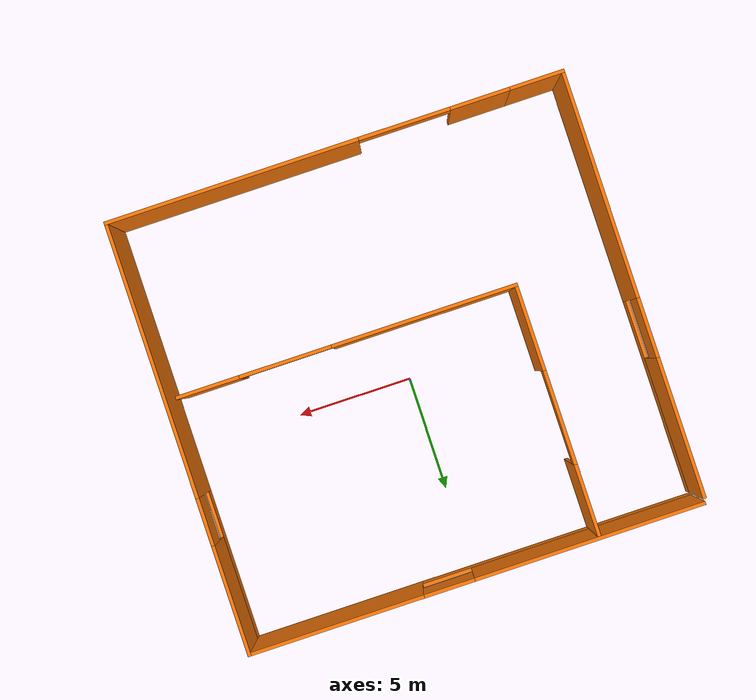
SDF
<?xml version='1.0'?>
<sdf version='1.6'>
  <model name='buildingmodel'>
    <pose frame=''>-0.063787 -0.708396 0 0 -0 0</pose>
    <link name='Wall_16'>
      <pose frame=''>1.175 -9.3 0 0 -0 0</pose>
      <visual name='Wall_16_Visual_0'>
        <pose frame=''>-7.45803 0 1.25 0 -0 0</pose>
        <geometry>
          <box>
            <size>2.58395 0.15 2.5</size>
          </box>
        </geometry>
        <material>
          <script>
            <uri>file://media/materials/scripts/gazebo.material</uri>
            <name>Gazebo/Grey</name>
          </script>
          <ambient>0.996078 0.47451 0.0196078 1</ambient>
        </material>
        <meta>
          <layer>0</layer>
        </meta>
      </visual>
      <collision name='Wall_16_Collision_0'>
        <geometry>
          <box>
            <size>2.58395 0.15 2.5</size>
          </box>
        </geometry>
        <pose frame=''>-7.45803 0 1.25 0 -0 0</pose>
      </collision>
      <visual name='Wall_16_Visual_1'>
        <pose frame=''>3.26705 0 1.25 0 -0 0</pose>
        <geometry>
          <box>
            <size>10.9659 0.15 2.5</size>
          </box>
        </geometry>
        <material>
          <script>
            <uri>file://media/materials/scripts/gazebo.material</uri>
            <name>Gazebo/Grey</name>
          </script>
          <ambient>0.996078 0.47451 0.0196078 1</ambient>
        </material>
        <meta>
          <layer>0</layer>
        </meta>
      </visual>
      <collision name='Wall_16_Collision_1'>
        <geometry>
          <box>
            <size>10.9659 0.15 2.5</size>
          </box>
        </geometry>
        <pose frame=''>3.26705 0 1.25 0 -0 0</pose>
      </collision>
      <visual name='Wall_16_Visual_2'>
        <pose frame=''>-4.19098 0 2.25 0 -0 0</pose>
        <geometry>
          <box>
            <size>3.95016 0.15 0.5</size>
          </box>
        </geometry>
        <material>
          <script>
            <uri>file://media/materials/scripts/gazebo.material</uri>
            <name>Gazebo/Grey</name>
          </script>
          <ambient>0.996078 0.47451 0.0196078 1</ambient>
        </material>
        <meta>
          <layer>0</layer>
        </meta>
      </visual>
      <collision name='Wall_16_Collision_2'>
        <geometry>
          <box>
            <size>3.95016 0.15 0.5</size>
          </box>
        </geometry>
        <pose frame=''>-4.19098 0 2.25 0 -0 0</pose>
      </collision>
    </link>
    <link name='Wall_19'>
      <collision name='Wall_19_Collision'>
        <geometry>
          <box>
            <size>2.5 0.15 2.5</size>
          </box>
        </geometry>
        <pose frame=''>0 0 1.25 0 -0 0</pose>
      </collision>
      <visual name='Wall_19_Visual'>
        <pose frame=''>0 0 1.25 0 -0 0</pose>
        <geometry>
          <box>
            <size>2.5 0.15 2.5</size>
          </box>
        </geometry>
        <material>
          <script>
            <uri>file://media/materials/scripts/gazebo.material</uri>
            <name>Gazebo/Grey</name>
          </script>
          <ambient>0.996078 0.47451 0.0196078 1</ambient>
        </material>
        <meta>
          <layer>0</layer>
        </meta>
      </visual>
      <pose frame=''>-8.675 -9.3 0 0 -0 3.14159</pose>
    </link>
    <link name='Wall_39'>
      <pose frame=''>9.85 0 0 0 -0 1.5708</pose>
      <visual name='Wall_39_Visual_0'>
        <pose frame=''>-3.40224 0 1.25 0 -0 0</pose>
        <geometry>
          <box>
            <size>11.9455 0.15 2.5</size>
          </box>
        </geometry>
        <material>
          <script>
            <uri>file://media/materials/scripts/gazebo.material</uri>
            <name>Gazebo/Grey</name>
          </script>
          <ambient>0.996078 0.47451 0.0196078 1</ambient>
        </material>
        <meta>
          <layer>0</layer>
        </meta>
      </visual>
      <collision name='Wall_39_Collision_0'>
        <geometry>
          <box>
            <size>11.9455 0.15 2.5</size>
          </box>
        </geometry>
        <pose frame=''>-3.40224 0 1.25 0 -0 0</pose>
      </collision>
      <visual name='Wall_39_Visual_1'>
        <pose frame=''>5.97276 0 0.25 0 -0 0</pose>
        <geometry>
          <box>
            <size>6.80448 0.15 0.5</size>
          </box>
        </geometry>
        <material>
          <script>
            <uri>file://media/materials/scripts/gazebo.material</uri>
            <name>Gazebo/Grey</name>
          </script>
          <ambient>0.996078 0.47451 0.0196078 1</ambient>
        </material>
        <meta>
          <layer>0</layer>
        </meta>
      </visual>
      <collision name='Wall_39_Collision_1'>
        <geometry>
          <box>
            <size>6.80448 0.15 0.5</size>
          </box>
        </geometry>
        <pose frame=''>5.97276 0 0.25 0 -0 0</pose>
      </collision>
      <visual name='Wall_39_Visual_2'>
        <pose frame=''>6.99343 0 1.5 0 -0 0</pose>
        <geometry>
          <box>
            <size>4.76314 0.15 2</size>
          </box>
        </geometry>
        <material>
          <script>
            <uri>file://media/materials/scripts/gazebo.material</uri>
            <name>Gazebo/Grey</name>
          </script>
          <ambient>0.996078 0.47451 0.0196078 1</ambient>
        </material>
        <meta>
          <layer>0</layer>
        </meta>
      </visual>
      <collision name='Wall_39_Collision_2'>
        <geometry>
          <box>
            <size>4.76314 0.15 2</size>
          </box>
        </geometry>
        <pose frame=''>6.99343 0 1.5 0 -0 0</pose>
      </collision>
      <visual name='Wall_39_Visual_3'>
        <pose frame=''>3.59119 0 1.9 0 -0 0</pose>
        <geometry>
          <box>
            <size>2.04134 0.15 1.2</size>
          </box>
        </geometry>
        <material>
          <script>
            <uri>file://media/materials/scripts/gazebo.material</uri>
            <name>Gazebo/Grey</name>
          </script>
          <ambient>0.996078 0.47451 0.0196078 1</ambient>
        </material>
        <meta>
          <layer>0</layer>
        </meta>
      </visual>
      <collision name='Wall_39_Collision_3'>
        <geometry>
          <box>
            <size>2.04134 0.15 1.2</size>
          </box>
        </geometry>
        <pose frame=''>3.59119 0 1.9 0 -0 0</pose>
      </collision>
    </link>
    <link name='Wall_40'>
      <pose frame=''>0.05 9.3 0 0 -0 3.14159</pose>
      <visual name='Wall_40_Visual_0'>
        <pose frame=''>-6.06574 0 1.25 0 -0 0</pose>
        <geometry>
          <box>
            <size>7.61852 0.15 2.5</size>
          </box>
        </geometry>
        <material>
          <script>
            <uri>file://media/materials/scripts/gazebo.material</uri>
            <name>Gazebo/Grey</name>
          </script>
          <ambient>0.996078 0.47451 0.0196078 1</ambient>
        </material>
        <meta>
          <layer>0</layer>
        </meta>
      </visual>
      <collision name='Wall_40_Collision_0'>
        <geometry>
          <box>
            <size>7.61852 0.15 2.5</size>
          </box>
        </geometry>
        <pose frame=''>-6.06574 0 1.25 0 -0 0</pose>
      </collision>
      <visual name='Wall_40_Visual_1'>
        <pose frame=''>3.80926 0 0.25 0 -0 0</pose>
        <geometry>
          <box>
            <size>12.1315 0.15 0.5</size>
          </box>
        </geometry>
        <material>
          <script>
            <uri>file://media/materials/scripts/gazebo.material</uri>
            <name>Gazebo/Grey</name>
          </script>
          <ambient>0.996078 0.47451 0.0196078 1</ambient>
        </material>
        <meta>
          <layer>0</layer>
        </meta>
      </visual>
      <collision name='Wall_40_Collision_1'>
        <geometry>
          <box>
            <size>12.1315 0.15 0.5</size>
          </box>
        </geometry>
        <pose frame=''>3.80926 0 0.25 0 -0 0</pose>
      </collision>
      <visual name='Wall_40_Visual_2'>
        <pose frame=''>4.90087 0 1.5 0 -0 0</pose>
        <geometry>
          <box>
            <size>9.94827 0.15 2</size>
          </box>
        </geometry>
        <material>
          <script>
            <uri>file://media/materials/scripts/gazebo.material</uri>
            <name>Gazebo/Grey</name>
          </script>
          <ambient>0.996078 0.47451 0.0196078 1</ambient>
        </material>
        <meta>
          <layer>0</layer>
        </meta>
      </visual>
      <collision name='Wall_40_Collision_2'>
        <geometry>
          <box>
            <size>9.94827 0.15 2</size>
          </box>
        </geometry>
        <pose frame=''>4.90087 0 1.5 0 -0 0</pose>
      </collision>
      <visual name='Wall_40_Visual_3'>
        <pose frame=''>-1.16487 0 1.9 0 -0 0</pose>
        <geometry>
          <box>
            <size>2.18321 0.15 1.2</size>
          </box>
        </geometry>
        <material>
          <script>
            <uri>file://media/materials/scripts/gazebo.material</uri>
            <name>Gazebo/Grey</name>
          </script>
          <ambient>0.996078 0.47451 0.0196078 1</ambient>
        </material>
        <meta>
          <layer>0</layer>
        </meta>
      </visual>
      <collision name='Wall_40_Collision_3'>
        <geometry>
          <box>
            <size>2.18321 0.15 1.2</size>
          </box>
        </geometry>
        <pose frame=''>-1.16487 0 1.9 0 -0 0</pose>
      </collision>
    </link>
    <link name='Wall_42'>
      <pose frame=''>-9.85 -0.125 0 0 -0 1.5708</pose>
      <visual name='Wall_42_Visual_0'>
        <pose frame=''>-4.32759 0 1.25 0 -0 0</pose>
        <geometry>
          <box>
            <size>9.84482 0.15 2.5</size>
          </box>
        </geometry>
        <material>
          <script>
            <uri>file://media/materials/scripts/gazebo.material</uri>
            <name>Gazebo/Grey</name>
          </script>
          <ambient>0.996078 0.47451 0.0196078 1</ambient>
        </material>
        <meta>
          <layer>0</layer>
        </meta>
      </visual>
      <collision name='Wall_42_Collision_0'>
        <geometry>
          <box>
            <size>9.84482 0.15 2.5</size>
          </box>
        </geometry>
        <pose frame=''>-4.32759 0 1.25 0 -0 0</pose>
      </collision>
      <visual name='Wall_42_Visual_1'>
        <pose frame=''>4.92241 0 0.25 0 -0 0</pose>
        <geometry>
          <box>
            <size>8.65518 0.15 0.5</size>
          </box>
        </geometry>
        <material>
          <script>
            <uri>file://media/materials/scripts/gazebo.material</uri>
            <name>Gazebo/Grey</name>
          </script>
          <ambient>0.996078 0.47451 0.0196078 1</ambient>
        </material>
        <meta>
          <layer>0</layer>
        </meta>
      </visual>
      <collision name='Wall_42_Collision_1'>
        <geometry>
          <box>
            <size>8.65518 0.15 0.5</size>
          </box>
        </geometry>
        <pose frame=''>4.92241 0 0.25 0 -0 0</pose>
      </collision>
      <visual name='Wall_42_Visual_2'>
        <pose frame=''>6.20908 0 1.5 0 -0 0</pose>
        <geometry>
          <box>
            <size>6.08183 0.15 2</size>
          </box>
        </geometry>
        <material>
          <script>
            <uri>file://media/materials/scripts/gazebo.material</uri>
            <name>Gazebo/Grey</name>
          </script>
          <ambient>0.996078 0.47451 0.0196078 1</ambient>
        </material>
        <meta>
          <layer>0</layer>
        </meta>
      </visual>
      <collision name='Wall_42_Collision_2'>
        <geometry>
          <box>
            <size>6.08183 0.15 2</size>
          </box>
        </geometry>
        <pose frame=''>6.20908 0 1.5 0 -0 0</pose>
      </collision>
      <visual name='Wall_42_Visual_3'>
        <pose frame=''>1.88149 0 1.9 0 -0 0</pose>
        <geometry>
          <box>
            <size>2.57335 0.15 1.2</size>
          </box>
        </geometry>
        <material>
          <script>
            <uri>file://media/materials/scripts/gazebo.material</uri>
            <name>Gazebo/Grey</name>
          </script>
          <ambient>0.996078 0.47451 0.0196078 1</ambient>
        </material>
        <meta>
          <layer>0</layer>
        </meta>
      </visual>
      <collision name='Wall_42_Collision_3'>
        <geometry>
          <box>
            <size>2.57335 0.15 1.2</size>
          </box>
        </geometry>
        <pose frame=''>1.88149 0 1.9 0 -0 0</pose>
      </collision>
    </link>
    <link name='Wall_45'>
      <pose frame=''>2.02344 -1.60383 0 0 -0 3.14159</pose>
      <visual name='Wall_45_Visual_0'>
        <pose frame=''>-6.0053 0 1.25 0 -0 0</pose>
        <geometry>
          <box>
            <size>2.7394 0.15 2.5</size>
          </box>
        </geometry>
        <material>
          <script>
            <uri>file://media/materials/scripts/gazebo.material</uri>
            <name>Gazebo/Grey</name>
          </script>
          <ambient>0.996078 0.47451 0.0196078 1</ambient>
        </material>
        <meta>
          <layer>0</layer>
        </meta>
      </visual>
      <collision name='Wall_45_Collision_0'>
        <geometry>
          <box>
            <size>2.7394 0.15 2.5</size>
          </box>
        </geometry>
        <pose frame=''>-6.0053 0 1.25 0 -0 0</pose>
      </collision>
      <visual name='Wall_45_Visual_1'>
        <pose frame=''>3.35584 0 1.25 0 -0 0</pose>
        <geometry>
          <box>
            <size>8.03832 0.15 2.5</size>
          </box>
        </geometry>
        <material>
          <script>
            <uri>file://media/materials/scripts/gazebo.material</uri>
            <name>Gazebo/Grey</name>
          </script>
          <ambient>0.996078 0.47451 0.0196078 1</ambient>
        </material>
        <meta>
          <layer>0</layer>
        </meta>
      </visual>
      <collision name='Wall_45_Collision_1'>
        <geometry>
          <box>
            <size>8.03832 0.15 2.5</size>
          </box>
        </geometry>
        <pose frame=''>3.35584 0 1.25 0 -0 0</pose>
      </collision>
      <visual name='Wall_45_Visual_2'>
        <pose frame=''>-2.64946 0 2.25 0 -0 0</pose>
        <geometry>
          <box>
            <size>3.97228 0.15 0.5</size>
          </box>
        </geometry>
        <material>
          <script>
            <uri>file://media/materials/scripts/gazebo.material</uri>
            <name>Gazebo/Grey</name>
          </script>
          <ambient>0.996078 0.47451 0.0196078 1</ambient>
        </material>
        <meta>
          <layer>0</layer>
        </meta>
      </visual>
      <collision name='Wall_45_Collision_2'>
        <geometry>
          <box>
            <size>3.97228 0.15 0.5</size>
          </box>
        </geometry>
        <pose frame=''>-2.64946 0 2.25 0 -0 0</pose>
      </collision>
    </link>
    <link name='Wall_46'>
      <pose frame=''>-5.27656 3.82117 0 0 -0 1.5708</pose>
      <visual name='Wall_46_Visual_0'>
        <pose frame=''>-3.61661 0 1.25 0 -0 0</pose>
        <geometry>
          <box>
            <size>3.76677 0.15 2.5</size>
          </box>
        </geometry>
        <material>
          <script>
            <uri>file://media/materials/scripts/gazebo.material</uri>
            <name>Gazebo/Grey</name>
          </script>
          <ambient>0.996078 0.47451 0.0196078 1</ambient>
        </material>
        <meta>
          <layer>0</layer>
        </meta>
      </visual>
      <collision name='Wall_46_Collision_0'>
        <geometry>
          <box>
            <size>3.76677 0.15 2.5</size>
          </box>
        </geometry>
        <pose frame=''>-3.61661 0 1.25 0 -0 0</pose>
      </collision>
      <visual name='Wall_46_Visual_1'>
        <pose frame=''>3.9047 0 1.25 0 -0 0</pose>
        <geometry>
          <box>
            <size>3.19059 0.15 2.5</size>
          </box>
        </geometry>
        <material>
          <script>
            <uri>file://media/materials/scripts/gazebo.material</uri>
            <name>Gazebo/Grey</name>
          </script>
          <ambient>0.996078 0.47451 0.0196078 1</ambient>
        </material>
        <meta>
          <layer>0</layer>
        </meta>
      </visual>
      <collision name='Wall_46_Collision_1'>
        <geometry>
          <box>
            <size>3.19059 0.15 2.5</size>
          </box>
        </geometry>
        <pose frame=''>3.9047 0 1.25 0 -0 0</pose>
      </collision>
      <visual name='Wall_46_Visual_2'>
        <pose frame=''>0.288089 0 2.25 0 -0 0</pose>
        <geometry>
          <box>
            <size>4.04264 0.15 0.5</size>
          </box>
        </geometry>
        <material>
          <script>
            <uri>file://media/materials/scripts/gazebo.material</uri>
            <name>Gazebo/Grey</name>
          </script>
          <ambient>0.996078 0.47451 0.0196078 1</ambient>
        </material>
        <meta>
          <layer>0</layer>
        </meta>
      </visual>
      <collision name='Wall_46_Collision_2'>
        <geometry>
          <box>
            <size>4.04264 0.15 0.5</size>
          </box>
        </geometry>
        <pose frame=''>0.288089 0 2.25 0 -0 0</pose>
      </collision>
    </link>
    <static>1</static>
  </model>
</sdf>
